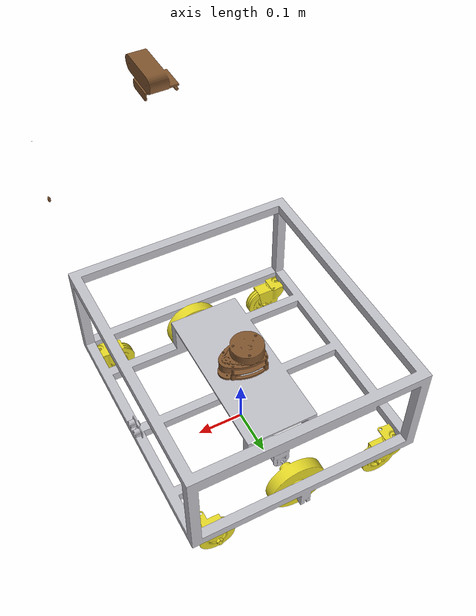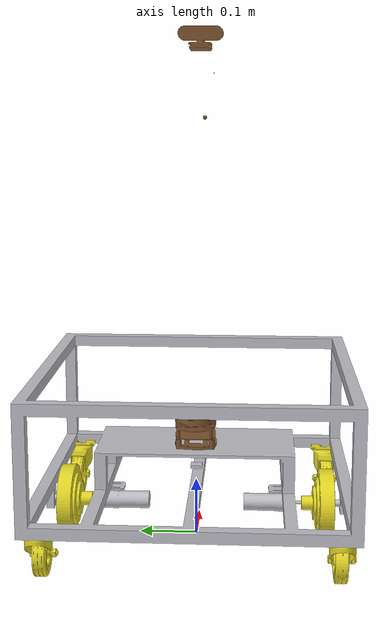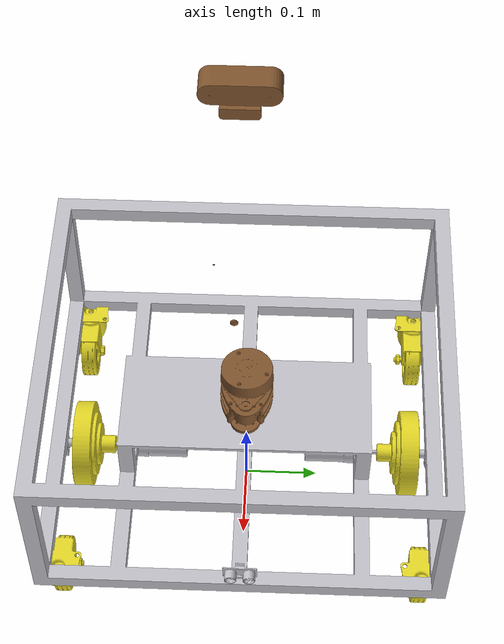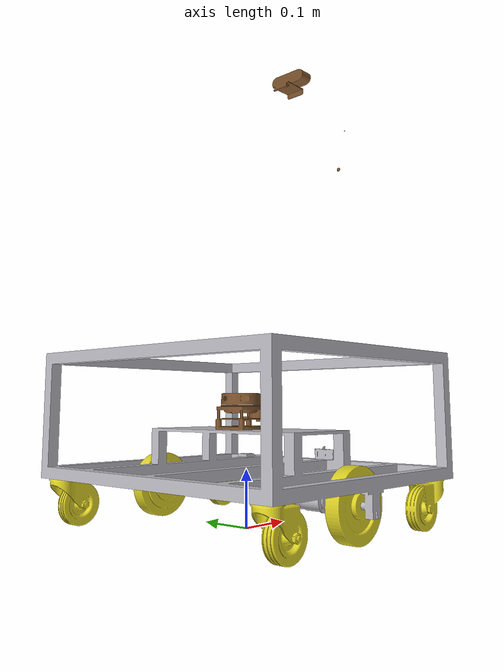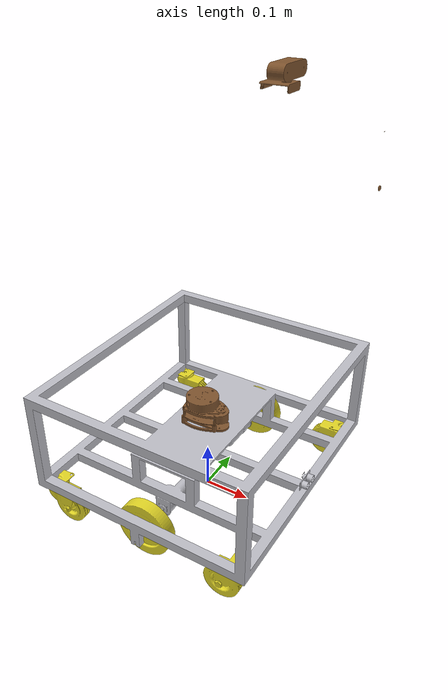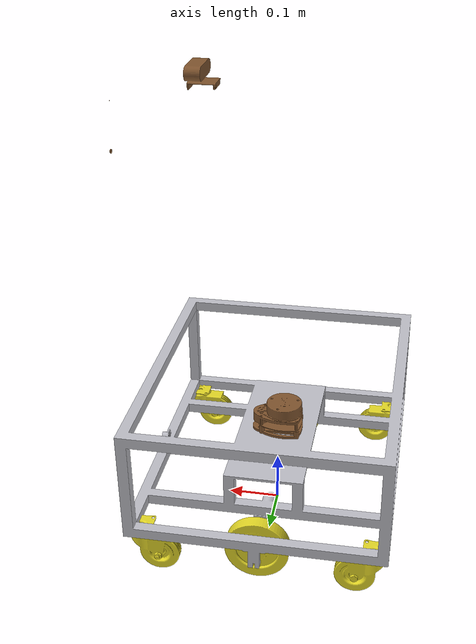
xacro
<?xml version="1.0" ?>
<robot name="mobi" xmlns:xacro="http://www.ros.org/wiki/xacro">

    <xacro:include filename="$(find mobi_description)/urdf/materials.xacro" />
    <xacro:include filename="$(find mobi_description)/urdf/gazebo.xacro" />
    <xacro:include filename="$(find mobi_description)/urdf/ros2_control.xacro" />
    <xacro:include filename="$(find mobi_description)/urdf/mobi_base.xacro" />
    <xacro:include filename="$(find mobi_description)/urdf/mobi_sensors.xacro" />

</robot>

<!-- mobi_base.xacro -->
<robot name="mobi" xmlns:xacro="http://www.ros.org/wiki/xacro">

    <!-- Load Simulated or Real Hardware Interfaces -->
    <xacro:arg name="is_sim" default="true"/> <!-- Overridden by hardware.launch -->
    <xacro:arg name="serial_port" default="/dev/ttyUSB0"/>

    <link name="base_footprint"/>

    <link name="base_link">
        <inertial>
            <origin xyz="0.0 0.0 -0.0" rpy="0.0 0.0 0.0"/>
            <mass value="5.0"/>
            <inertia ixx="0.1" ixy="0.0" ixz="0.0" iyy="0.1" iyz="0.0" izz="0.1"/>
        </inertial>
        <visual>
            <origin xyz="0.0 0.0 -0.0" rpy="0.0 0.0 0.0"/>
            <geometry>
                <mesh filename="package://mobi_description/meshes/base_link.stl" scale="0.001 0.001 0.001"/>
            </geometry>
            <material name="silver"/>
        </visual>
        <collision>
            <origin xyz="0.0 0.0 0.0" rpy="0.0 0.0 0.0"/>
            <geometry>
                <mesh filename="package://mobi_description/meshes/base_link.stl" scale="0.001 0.001 0.001"/>
            </geometry>
        </collision>
    </link>

    <joint name="base_joint" type="fixed">
        <origin xyz="0.0 0.0 0.0" rpy="0.0 0.0 0.0"/>
        <parent link="base_footprint"/>
        <child link="base_link"/>
    </joint>

    <link name="right_wheel">
        <inertial>
            <origin xyz="-0.0 0.2275 -0.06" rpy="0.0 0.0 0.0"/>
            <mass value="1.0"/>
            <inertia ixx="0.1" ixy="0.0" ixz="0.0" iyy="0.1" iyz="0.0" izz="0.1"/>
        </inertial>
        <visual>
            <origin xyz="-0.0 0.2275 -0.06" rpy="0.0 0.0 0.0"/>
            <geometry>
                <mesh filename="package://mobi_description/meshes/right_wheel.stl" scale="0.001 0.001 0.001"/>
            </geometry>
            <material name="mud_yellow"/>
        </visual>
        <collision>
            <origin xyz="0.0 0.0 0.0" rpy="0.0 0.0 0.0"/>
            <geometry>
                <sphere radius="0.06"/>
            </geometry>
        </collision>
    </link>

    <joint name="right_wheel_joint" type="continuous">
        <origin xyz="0.0 -0.2275 0.06" rpy="0.0 0.0 0.0"/>
        <parent link="base_link"/>
        <child link="right_wheel"/>
        <axis xyz="0.0 1.0 0.0"/>
    </joint>

    <link name="left_wheel">
        <inertial>
            <origin xyz="-0.0 -0.2275 -0.06" rpy="0.0 0.0 0.0"/>
            <mass value="1.0"/>
            <inertia ixx="0.1" ixy="0.0" ixz="0.0" iyy="0.1" iyz="0.0" izz="0.1"/>
        </inertial>
        <visual>
            <origin xyz="-0.0 -0.2275 -0.06" rpy="0.0 0.0 0.0"/>
            <geometry>
                <mesh filename="package://mobi_description/meshes/left_wheel.stl" scale="0.001 0.001 0.001"/>
            </geometry>
            <material name="mud_yellow"/>
        </visual>
        <collision>
            <origin xyz="0.0 0.0 0.0" rpy="0.0 0.0 0.0"/>
            <geometry>
                <sphere radius="0.06"/>
            </geometry>
        </collision>
    </link>

    <joint name="left_wheel_joint" type="continuous">
        <origin xyz="0.0 0.2275 0.06" rpy="0.0 0.0 0.0"/>
        <parent link="base_link"/>
        <child link="left_wheel"/>
        <axis xyz="0.0 1.0 0.0"/>
    </joint>

    <link name="front_left_castor_wheel">
        <inertial>
            <origin xyz="-0.22 -0.24 -0.08" rpy="0.0 0.0 0.0"/>
            <mass value="1.0"/>
            <inertia ixx="0.1" ixy="0.0" ixz="0.0" iyy="0.1" iyz="0.0" izz="0.1"/>
        </inertial>
        <visual>
            <origin xyz="-0.22 -0.24 -0.08" rpy="0.0 0.0 0.0"/>
            <geometry>
                <mesh filename="package://mobi_description/meshes/fl_castor.stl" scale="0.001 0.001 0.001"/>
            </geometry>
            <material name="mud_yellow"/>
        </visual>
        <collision>
            <origin xyz="0.0 0.0 -0.03" rpy="0.0 0.0 0.0"/>
            <geometry>
                <sphere radius="0.05"/>
            </geometry>
        </collision>
    </link>

    <joint name="front_left_castor_joint" type="fixed">
        <origin xyz="0.22 0.24 0.08" rpy="0.0 0.0 0.0"/>
        <parent link="base_link"/>
        <child link="front_left_castor_wheel"/>
    </joint>

    <link name="front_right_castor_wheel">
        <inertial>
            <origin xyz="-0.22 0.24 -0.08" rpy="0.0 0.0 0.0"/>
            <mass value="1.0"/>
            <inertia ixx="0.1" ixy="0.0" ixz="0.0" iyy="0.1" iyz="0.0" izz="0.1"/>
        </inertial>
        <visual>
            <origin xyz="-0.22 0.24 -0.08" rpy="0.0 0.0 0.0"/>
            <geometry>
                <mesh filename="package://mobi_description/meshes/fr_castor.stl" scale="0.001 0.001 0.001"/>
            </geometry>
            <material name="mud_yellow"/>
        </visual>
        <collision>
            <origin xyz="0.0 0.0 -0.03" rpy="0.0 0.0 0.0"/>
            <geometry>
                <sphere radius="0.05"/>
            </geometry>
        </collision>
    </link>

    <joint name="front_right_castor_joint" type="fixed">
        <origin xyz="0.22 -0.24 0.08" rpy="0.0 0.0 0.0"/>
        <parent link="base_link"/>
        <child link="front_right_castor_wheel"/>
    </joint>

    <link name="back_left_castor_wheel">
        <inertial>
            <origin xyz="0.22 -0.24 -0.08" rpy="0.0 0.0 0.0"/>
            <mass value="1.0"/>
            <inertia ixx="0.1" ixy="0.0" ixz="0.0" iyy="0.1" iyz="0.0" izz="0.1"/>
        </inertial>
        <visual>
            <origin xyz="0.22 -0.24 -0.08" rpy="0.0 0.0 0.0"/>
            <geometry>
                <mesh filename="package://mobi_description/meshes/bl_castor.stl" scale="0.001 0.001 0.001"/>
            </geometry>
            <material name="mud_yellow"/>
        </visual>
        <collision>
            <origin xyz="0.0 0.0 -0.03" rpy="0.0 0.0 0.0"/>
            <geometry>
                <sphere radius="0.05"/>
            </geometry>
        </collision>
    </link>

    <joint name="back_left_castor_joint" type="fixed">
        <origin xyz="-0.22 0.24 0.08" rpy="0.0 0.0 0.0"/>
        <parent link="base_link"/>
        <child link="back_left_castor_wheel"/>
    </joint>

    <link name="back_right_castor_wheel">
        <inertial>
            <origin xyz="0.22 0.24 -0.08" rpy="0.0 0.0 0.0"/>
            <mass value="1.0"/>
            <inertia ixx="0.1" ixy="0.0" ixz="0.0" iyy="0.1" iyz="0.0" izz="0.1"/>
        </inertial>
        <visual>
            <origin xyz="0.22 0.24 -0.08" rpy="0.0 0.0 0.0"/>
            <geometry>
                <mesh filename="package://mobi_description/meshes/br_castor.stl" scale="0.001 0.001 0.001"/>
            </geometry>
            <material name="mud_yellow"/>
        </visual>
        <collision>
            <origin xyz="0.0 0.0 -0.03" rpy="0.0 0.0 0.0"/>
            <geometry>
                <sphere radius="0.05"/>
            </geometry>
        </collision>
    </link>

    <joint name="back_right_castor_joint" type="fixed">
        <origin xyz="-0.22 -0.24 0.08" rpy="0.0 0.0 0.0"/>
        <parent link="base_link"/>
        <child link="back_right_castor_wheel"/>
    </joint>

</robot>

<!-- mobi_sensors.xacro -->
<robot name="mobi" xmlns:xacro="http://www.ros.org/wiki/xacro">

    <link name="laser_link">
        <inertial>
            <origin xyz="0.013 0.0 -0.23" rpy="0.0 0.0 0.0"/>
            <mass value="0.5"/>
            <inertia ixx="0.1" ixy="0.0" ixz="0.0" iyy="0.1" iyz="0.0" izz="0.1"/>
        </inertial>
        <visual>
            <origin xyz="0.013 0.0 -0.23" rpy="0.0 0.0 0.0"/>
            <geometry>
                <mesh filename="package://mobi_description/meshes/lidar.stl" scale="0.001 0.001 0.001"/>
            </geometry>
            <material name="matte_brown"/>
        </visual>
        <collision>
            <origin xyz="0.013 0.0 -0.23" rpy="0.0 0.0 0.0"/>
            <geometry>
                <mesh filename="package://mobi_description/meshes/lidar.stl" scale="0.001 0.001 0.001"/> <!--Kepp it as it is-->
            </geometry>
        </collision>
    </link>

    <joint name="laser_joint" type="fixed">
        <origin xyz="-0.013 0.0 0.23" rpy="0.0 0.0 0.0"/>
        <parent link="base_link"/>
        <child link="laser_link"/>
    </joint>

    <link name="camera_link">
        <inertial>
            <origin xyz="-0.25 0 -0.32" rpy="0.0 0.0 0.0"/>
            <mass value="0.5"/>
            <inertia ixx="0.1" ixy="0.0" ixz="0.0" iyy="0.1" iyz="0.0" izz="0.1"/>
        </inertial>
        <visual>
            <origin xyz="-0.25 0 -0.32" rpy="0.0 0.0 0.0"/>
            <geometry>
                <mesh filename="package://mobi_description/meshes/camera.stl" scale="0.001 0.001 0.001"/>
            </geometry>
            <material name="matte_brown"/>
        </visual>
        <collision>
            <origin xyz="-0.25 0 -0.32" rpy="0.0 0.0 0.0"/>
            <geometry>
                <mesh filename="package://mobi_description/meshes/camera.stl" scale="0.001 0.001 0.001"/>
            </geometry>
        </collision>
    </link>

    <joint name="camera_joint" type="fixed">
        <origin xyz="0.25 0.0 0.32" rpy="0.0 0.0 0.0"/>
        <parent link="base_link"/>
        <child link="camera_link"/>
    </joint>

    <link name="camera_link_optical" />

    <joint name="camera_optical_joint" type="fixed">
        <parent link="camera_link"/>
        <child link="camera_link_optical"/>
        <origin xyz="0 0 0" rpy="${-pi/2} 0 ${-pi/2}"/>
    </joint>

    <link name="imu_link">
        <inertial>
            <origin xyz="0.0 0.0 0.0" rpy="0.0 0.0 0.0"/>
            <mass value="0.1"/>
            <inertia ixx="0.1" ixy="0.0" ixz="0.0" iyy="0.1" iyz="0.0" izz="0.1"/>
        </inertial>
        <visual>
            <origin xyz="0.0 0.0 0.0" rpy="0.0 0.0 0.0"/>
            <geometry>
                <box size="0.02 0.02 0.005"/>
            </geometry>
            <material name="silver"/>
        </visual>
        <collision>
            <origin xyz="0.0 0.0 0.0" rpy="0.0 0.0 0.0"/>
            <geometry>
                <box size="0.02 0.02 0.005"/>
            </geometry>
        </collision>
    </link>

    <joint name="imu_joint" type="fixed">
        <origin xyz="0.0 0.0 0.125" rpy="0.0 0.0 0.0"/>
        <parent link="base_link"/>
        <child link="imu_link"/>
    </joint>

    <link name="ultrasonic_link">
        <inertial>
            <origin xyz="-0.22 0.0 -0.12" rpy="0.0 0.0 0.0"/>
            <mass value="0.1"/>
            <inertia ixx="0.1" ixy="0.0" ixz="0.0" iyy="0.1" iyz="0.0" izz="0.1"/>
        </inertial>
        <visual>
            <origin xyz="-0.22 0.0 -0.12" rpy="0.0 0.0 0.0"/>
            <geometry>
                <mesh filename="package://mobi_description/meshes/ultrasonic.stl" scale="0.001 0.001 0.001"/>
            </geometry>
            <material name="silver"/>
        </visual>
        <collision>
            <origin xyz="-0.22 0.0 -0.12" rpy="0.0 0.0 0.0"/>
            <geometry>
                <mesh filename="package://mobi_description/meshes/ultrasonic.stl" scale="0.001 0.001 0.001"/>
            </geometry>
        </collision>
    </link>

    <joint name="ultrasonic_joint" type="fixed">
        <origin xyz="0.22 0.0 0.12" rpy="0.0 0.0 0.0"/>
        <parent link="base_link"/>
        <child link="ultrasonic_link"/>
    </joint>

</robot>
